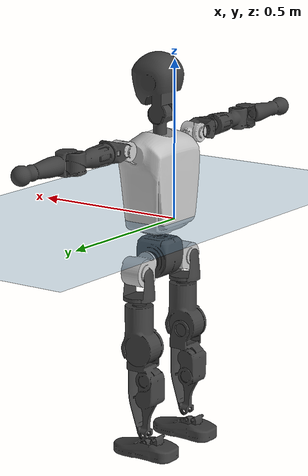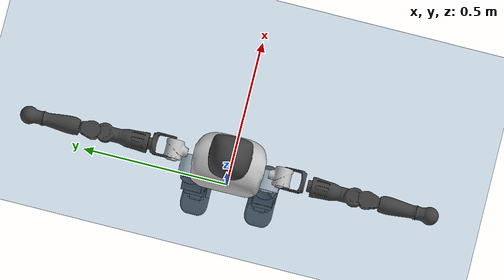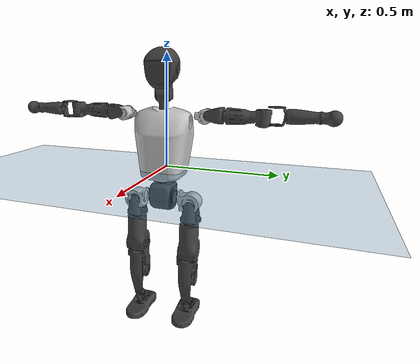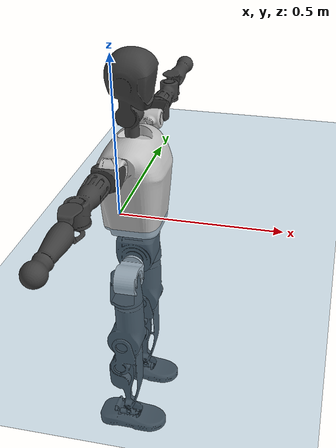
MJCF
<mujoco model="T1">
  <compiler angle="radian" assetdir="assets" balanceinertia="true" inertiafromgeom="false"/>

  <option timestep="0.005" density="1.2" viscosity="2e-05"/>

  <size nkey="1"/>

  <visual>
    <quality shadowsize="8192"/>
    <map shadowclip="0.5"/>
  </visual>

  <default>
    <default class="/">
      <joint armature="0.01" damping="0.01" frictionloss="0.1"/>
      <geom contype="0" conaffinity="0" group="1" solref="-1000 -80"/>
      <site size="0.01 0.005 0.005" group="5"/>
      <general forcelimited="true" biastype="affine" gainprm="25" biasprm="0 -25 -0.6"/>
      <default class="t1">
        <geom rgba="0.25 0.25 0.25 1"/>
        <default class="visual">
          <geom type="mesh" group="2"/>
        </default>
        <default class="collision">
          <geom group="3"/>
        </default>
        <default class="foot">
          <geom size="0.1115 0.05 0.015" type="box" condim="6" group="4" priority="1" solimp="0.015 1 0.015"/>
        </default>
        <default class="reward_collision_sphere">
          <geom group="5" rgba="1 0 0 1"/>
        </default>
      </default>
    </default>
  </default>

  <asset>
    <texture type="skybox" colorspace="auto" name="//unnamed_texture_0" builtin="gradient" rgb1="0.95 0.95 0.95" rgb2="0.95 0.95 0.95" width="100" height="600"/>
    <texture type="2d" colorspace="auto" name="texplane" builtin="checker" rgb1="0.345 0.575 0.748" rgb2="0.345 0.575 0.748" markrgb="1 1 1" width="512" height="512"/>
    <material name="MatPlane" class="/" texture="texplane" texuniform="true" texrepeat="2 2" specular="0.9"/>
    <mesh name="Trunk" class="/" file="Trunk.stl"/>
    <mesh name="H1" class="/" file="H1.stl"/>
    <mesh name="H2" class="/" file="H2.stl"/>
    <mesh name="AL1" class="/" file="AL1.stl"/>
    <mesh name="AL2" class="/" file="AL2.stl"/>
    <mesh name="AL3" class="/" file="AL3.stl"/>
    <mesh name="left_hand_link" class="/" file="left_hand_link.stl"/>
    <mesh name="AR1" class="/" file="AR1.stl"/>
    <mesh name="AR2" class="/" file="AR2.stl"/>
    <mesh name="AR3" class="/" file="AR3.stl"/>
    <mesh name="right_hand_link" class="/" file="right_hand_link.stl"/>
    <mesh name="Waist" class="/" file="Waist.stl"/>
    <mesh name="Hip_Pitch_Left" class="/" file="Hip_Pitch_Left.stl"/>
    <mesh name="Hip_Roll_Left" class="/" file="Hip_Roll_Left.stl"/>
    <mesh name="Hip_Yaw_Left" class="/" file="Hip_Yaw_Left.stl"/>
    <mesh name="Shank_Left" class="/" file="Shank_Left.stl"/>
    <mesh name="Ankle_Cross_Left" class="/" file="Ankle_Cross_Left.stl"/>
    <mesh name="left_foot_link" class="/" file="left_foot_link.stl"/>
    <mesh name="Hip_Pitch_Right" class="/" file="Hip_Pitch_Right.stl"/>
    <mesh name="Hip_Roll_Right" class="/" file="Hip_Roll_Right.stl"/>
    <mesh name="Hip_Yaw_Right" class="/" file="Hip_Yaw_Right.stl"/>
    <mesh name="Shank_Right" class="/" file="Shank_Right.stl"/>
    <mesh name="Ankle_Cross_Right" class="/" file="Ankle_Cross_Right.stl"/>
    <mesh name="right_foot_link" class="/" file="right_foot_link.stl"/>
  </asset>

  <worldbody>
    <geom name="floor" class="/" size="100 100 0.125" type="plane" group="0" material="MatPlane"/>
    <light name="toplight_shadow" class="/" pos="0 0 5" dir="0.0990148 0.0990148 -0.990148" type="directional" ambient="0.04 0.04 0.04" diffuse="0.55 0.55 0.55" specular="0.12 0.12 0.12"/>
    <light name="toplight_fill" class="/" pos="0 0 5" dir="0.0990148 0.0990148 -0.990148" type="directional" castshadow="false" ambient="0.04 0.04 0.04" diffuse="0.3 0.3 0.3" specular="0.08 0.08 0.08"/>
    <body name="trunk" childclass="t1" pos="0.00215108 0.00656786 -0.00349218" quat="0.999998 -0.000966287 -0.000999827 0.00142828">
      <inertial pos="0.045965 0.00057586 0.114329" quat="0.99996 -0.0038239 -0.00793501 -0.0014949" mass="15.8669" diaginertia="0.0387297 0.234643 0.0935761"/>
      <joint name="//unnamed_joint_0" type="free" armature="0" damping="0" frictionloss="0"/>
      <geom name="//unnamed_geom_1" class="visual" rgba="0.76 0.76 0.76 1" mesh="Trunk"/>
      <geom name="//unnamed_geom_2" class="collision" size="0.0812458 0.108328 0.162492" pos="0.0510564 0 0.133349" type="box"/>
      <geom name="//unnamed_geom_3" class="reward_collision_sphere" size="0.124577" pos="0.0510564 0 0.111124"/>
      <geom name="//unnamed_geom_4" class="reward_collision_sphere" size="0.0162492" pos="0.0510564 0.10945 0"/>
      <geom name="//unnamed_geom_5" class="reward_collision_sphere" size="0.0162492" pos="0.0510564 -0.10945 0"/>
      <geom name="//unnamed_geom_6" class="reward_collision_sphere" size="0.0162492" pos="0.0510564 0.137779 0.200023"/>
      <geom name="//unnamed_geom_7" class="reward_collision_sphere" size="0.0162492" pos="0.0510564 -0.137779 0.200023"/>
      <site name="imu" pos="0.0227841 0.0400379 0.00954209" size="0.0108328"/>
      <camera name="track" pos="0 -2.57531 0" quat="0.707107 0.707107 0 0" mode="trackcom"/>
      <camera name="ego_camera" pos="0.103815 0 0.46672" quat="-0.5 -0.5 0.5 0.5"/>
      <body name="H1" pos="0.0495052 -0.0022278 0.267051" quat="0.999999 0.000436536 0.000527195 0.00155664">
        <inertial pos="-0.00403743 -0.000824332 0.0596502" quat="0.770143 -0.0438095 0.0416795 0.634999" mass="0.552568" diaginertia="0.000109206 0.000740571 0.00026743"/>
        <joint name="AAHead_yaw" pos="0 0 0" axis="0.0135464 -0.0380476 0.999184" range="-1.47491 1.59565" armature="0.00859723" damping="0.00433373" frictionloss="0.137355"/>
        <geom name="//unnamed_geom_8" class="visual" mesh="H1"/>
        <body name="H2" pos="-0.00744649 -0.00145042 0.0665476" quat="1 0.000267216 0.000322668 0.000760931">
          <inertial pos="0.00718252 0.0107511 0.108598" quat="0.988436 0.107012 -0.0724103 -0.0793668" mass="0.8613" diaginertia="0.00100201 0.00829137 0.00308412"/>
          <joint name="Head_pitch" pos="0 0 0" axis="-0.0316274 -0.9995 -0.000469117" stiffness="0.0106052" range="-1.24371 0.289251" armature="0.0112687" damping="0.00315734" frictionloss="0.117718"/>
          <geom name="//unnamed_geom_9" class="visual" mesh="H2"/>
          <geom name="//unnamed_geom_10" class="collision" size="0.0866621" pos="0.0085094 0 0.122236"/>
          <geom name="//unnamed_geom_11" class="reward_collision_sphere" size="0.0974949" pos="0.0170188 0 0.111124"/>
        </body>
      </body>
      <body name="AL1" pos="0.053883 0.140563 0.244514" quat="1 7.16022e-05 0.000599571 -0.000152714">
        <inertial pos="0.000585537 0.0570902 0.0092741" quat="0.500892 0.526337 -0.506075 0.464721" mass="0.58477" diaginertia="0.000514013 0.00386448 0.000423219"/>
        <joint name="Left_Shoulder_Pitch" pos="0 0 0" axis="-0.00764711 0.999294 -0.0367794" range="-3.29199 1.26496" armature="0.0109671" damping="0" frictionloss="0.114975"/>
        <geom name="//unnamed_geom_12" class="visual" rgba="0.76 0.76 0.76 1" mesh="AL1"/>
        <body name="AL2" pos="0.00341398 0.066593 0.00696543" quat="0.999985 -0.00411179 -0.00295511 0.00224459">
          <inertial pos="0.0073851 0.0593045 0.000493226" quat="0.485917 0.512588 -0.487846 0.512977" mass="0.209715" diaginertia="0.000175888 0.00129435 0.000307437"/>
          <joint name="Left_Shoulder_Roll" pos="0 0 0" axis="-0.998556 0.030798 -0.0440114" stiffness="0.0467183" range="-1.74222 1.75552" armature="0.0120812" damping="0.0571482" frictionloss="0.0643075"/>
          <geom name="//unnamed_geom_13" class="visual" mesh="AL2"/>
          <body name="AL3" pos="-0.00461645 0.0678007 -0.00153587" quat="0.99999 -0.000150243 0.00436814 0.000540067">
            <inertial pos="-0.000674978 0.117013 0.00114044" quat="0.708667 0.705292 0.00131157 0.0187972" mass="1.16903" diaginertia="0.00610913 0.0428125 0.00123095"/>
            <joint name="Left_Elbow_Pitch" pos="0 0 0" axis="-0.0293832 -0.999451 0.0153067" stiffness="0.032925" range="-2.48138 2.46054" armature="0.00581117" damping="0.047583" frictionloss="0.0758779"/>
            <geom name="//unnamed_geom_14" class="visual" mesh="AL3"/>
            <geom name="//unnamed_geom_15" class="collision" size="0.0324983 0.0812458" pos="0 0.0643826 0" quat="0.707105 0.707108 0 0" type="cylinder"/>
            <geom name="//unnamed_geom_16" class="reward_collision_sphere" size="0.038998"/>
            <body name="left_hand_link" pos="-0.00281224 0.189263 0.00906015" quat="0.999997 0.0022686 -1.70868e-05 0.00108148">
              <inertial pos="-1.98357e-05 0.143086 0.00706627" quat="0.707677 0.706505 -0.00465133 0.00482171" mass="0.393914" diaginertia="0.00348582 0.0282073 0.000362444"/>
              <joint name="Left_Elbow_Yaw" pos="0 0 0" axis="0.00499082 0.020529 0.999777" range="-2.45757 0.0397475" armature="0.0110429" damping="0.0209368" frictionloss="0.0867291"/>
              <geom name="//unnamed_geom_17" class="visual" mesh="left_hand_link"/>
              <geom name="//unnamed_geom_18" class="collision" size="0.0324983 0.0947867" pos="0 0.167395 0" quat="0.707105 0.707108 0 0" type="cylinder"/>
              <geom name="//unnamed_geom_19" class="reward_collision_sphere" size="0.0541638"/>
              <geom name="//unnamed_geom_20" class="reward_collision_sphere" size="0.0379147" pos="0 0.141642 0"/>
              <geom name="//unnamed_geom_21" class="reward_collision_sphere" size="0.0379147" pos="0 0.276845 0"/>
            </body>
          </body>
        </body>
      </body>
      <body name="AR1" pos="0.050338 -0.138081 0.24486" quat="0.999999 0.000975329 0.000743274 -0.000854197">
        <inertial pos="0.00159156 -0.0497721 -0.00847777" quat="0.498566 0.498349 -0.500957 0.502119" mass="0.672395" diaginertia="0.000659713 0.00452152 0.000460286"/>
        <joint name="Right_Shoulder_Pitch" pos="0 0 0" axis="-0.00126005 -0.999999 0.000328069" stiffness="0.00325316" range="-1.21133 3.30167" armature="0.013067" damping="0.00594349" frictionloss="0.109933"/>
        <geom name="//unnamed_geom_22" class="visual" rgba="0.76 0.76 0.76 1" mesh="AR1"/>
        <body name="AR2" pos="-0.0018148 -0.0676178 0.00260371" quat="0.999999 0.000206026 0.00087821 0.000627918">
          <inertial pos="0.00546039 -0.0484412 0.00924987" quat="0.506163 0.475871 -0.517377 0.499667" mass="0.193536" diaginertia="0.000189076 0.00135121 0.000324777"/>
          <joint name="Right_Shoulder_Roll" pos="0 0 0" axis="-0.999735 -0.00502025 -0.0224522" range="-1.72166 1.41326" armature="0.0110427" damping="0.0439686" frictionloss="0.108911"/>
          <geom name="//unnamed_geom_23" class="visual" mesh="AR2"/>
          <body name="AR3" pos="-0.00577166 -0.0789062 0.00442741" quat="1 -2.27731e-05 -0.0006025 -0.000642698">
            <inertial pos="-0.00151621 -0.10627 -0.000812883" quat="0.706788 0.707405 -0.00352224 -0.00399625" mass="1.30411" diaginertia="0.00557713 0.0414847 0.0009868"/>
            <joint name="Right_Elbow_Pitch" pos="0 0 0" axis="-0.0064286 0.99997 0.00429966" stiffness="0.0218965" range="-2.27889 2.26403" armature="0.00612659" damping="0.00341786" frictionloss="0.153512"/>
            <geom name="//unnamed_geom_24" class="visual" mesh="AR3"/>
            <geom name="//unnamed_geom_25" class="collision" size="0.0324983 0.0812458" pos="0 -0.0643826 0" quat="0.707105 0.707108 0 0" type="cylinder"/>
            <geom name="//unnamed_geom_26" class="reward_collision_sphere" size="0.038998"/>
            <body name="right_hand_link" pos="0.000740472 -0.187081 -0.000226289" quat="0.999998 -0.000483328 0.00194564 0.000211804">
              <inertial pos="0.000478847 -0.142904 0.0107182" quat="0.677672 0.734853 -0.0192696 0.01952" mass="0.359802" diaginertia="0.00403305 0.028827 0.000346601"/>
              <joint name="Right_Elbow_Yaw" pos="0 0 0" axis="0.0190659 -0.00487309 0.999806" stiffness="0.0392506" range="0.170065 2.24733" armature="0.0108565" damping="0.00662275" frictionloss="0.105435"/>
              <geom name="//unnamed_geom_27" class="visual" mesh="right_hand_link"/>
              <geom name="//unnamed_geom_28" class="collision" size="0.0324983 0.0947867" pos="0 -0.167395 0" quat="0.707105 0.707108 0 0" type="cylinder"/>
              <geom name="//unnamed_geom_29" class="reward_collision_sphere" size="0.0541638"/>
              <geom name="//unnamed_geom_30" class="reward_collision_sphere" size="0.0379147" pos="0 -0.141642 0"/>
              <geom name="//unnamed_geom_31" class="reward_collision_sphere" size="0.0379147" pos="0 -0.276845 0"/>
            </body>
          </body>
        </body>
      </body>
      <body name="Waist" pos="0.0499889 -0.0018368 -0.127177" quat="1 0.000144599 -0.000435772 -0.000803986">
        <inertial pos="0.00360831 0.00150149 0.00484874" quat="0.985474 0.00721255 -0.169096 0.0139704" mass="3.44519" diaginertia="0.00257673 0.0182472 0.00789196"/>
        <joint name="Waist" pos="0 0 0" axis="-0.0385646 -0.00588625 0.999239" stiffness="0.0535567" range="-1.57422 1.53198" armature="0.00985165" damping="0" frictionloss="0.147275"/>
        <geom name="//unnamed_geom_32" class="visual" mesh="Waist"/>
        <body name="Hip_Pitch_Left" pos="-0.00657478 0.128467 0.00176376" quat="1 -0.000399742 -0.000792078 -0.000259617">
          <inertial pos="-0.00871376 -0.0123117 -0.0122445" quat="0.964586 0.262131 0.0165571 0.0242345" mass="1.21238" diaginertia="0.000822986 0.00525908 0.00206879"/>
          <joint name="Left_Hip_Pitch" pos="0 0 0" axis="-0.0117633 0.999913 -0.00590037" range="-1.82342 1.40479" armature="0.00984746" damping="0.0399659" frictionloss="0.104123"/>
          <geom name="//unnamed_geom_33" class="visual" rgba="0.76 0.76 0.76 1" mesh="Hip_Pitch_Left"/>
          <body name="Hip_Roll_Left" pos="-0.00439289 0.000218881 -0.0303681" quat="1 -0.000209099 -0.000232333 -4.40423e-05">
            <inertial pos="0.0058682 -0.00674586 -0.0614129" quat="0.700727 0.0181553 0.00314337 0.713191" mass="0.550382" diaginertia="0.000777594 0.00659215 0.000984639"/>
            <joint name="Left_Hip_Roll" pos="0 0 0" axis="-0.999934 -0.0114776 0.000884803" range="-1.60544 0.148561" armature="0.0119417" damping="0.0115783" frictionloss="0.137778"/>
            <geom name="//unnamed_geom_34" class="visual" mesh="Hip_Roll_Left"/>
            <geom name="//unnamed_geom_35" class="reward_collision_sphere" size="0.0595802"/>
            <body name="Hip_Yaw_Left" pos="0.00204211 -0.00606023 -0.0969555" quat="0.999999 -0.000551771 0.000933636 0.000734733">
              <inertial pos="-0.00591292 -0.00159154 -0.100483" quat="0.681837 -0.0593857 0.000946174 0.729089" mass="3.09254" diaginertia="0.0119487 0.0940412 0.00465387"/>
              <joint name="Left_Hip_Yaw" pos="0 0 0" axis="-0.0169645 -0.0390979 -0.999091" range="-1.07216 1.12897" armature="0.00994785" damping="0" frictionloss="0.117728"/>
              <geom name="//unnamed_geom_36" class="visual" mesh="Hip_Yaw_Left"/>
              <geom name="//unnamed_geom_37" class="collision" size="0.0541638 0.0866621" type="cylinder"/>
              <body name="Shank_Left" pos="-0.017958 -0.00799031 -0.141362" quat="0.999999 -0.000494453 0.000858907 0.000853222">
                <inertial pos="-0.00461031 0.00998724 -0.138623" quat="0.997936 -0.00187349 -0.0225945 0.0600766" mass="2.13805" diaginertia="0.0131822 0.12204 0.00268949"/>
                <joint name="Left_Knee_Pitch" pos="0 0 0" axis="-0.0103968 0.99985 -0.0138164" range="-0.0697635 2.32855" armature="0.0102374" damping="0" frictionloss="0.0484889"/>
                <geom name="//unnamed_geom_38" class="visual" mesh="Shank_Left"/>
                <geom name="//unnamed_geom_39" class="collision" size="0.0541638 0.0812458" pos="0 0 -0.133349" type="cylinder"/>
                <geom name="//unnamed_geom_40" class="reward_collision_sphere" size="0.070413"/>
                <body name="Ankle_Cross_Left" pos="-0.00129546 0.000476589 -0.306487" quat="1 0.000430094 0.000433812 0.000241869">
                  <inertial pos="-0.00469727 -0.00150065 -0.0128725" quat="0.445232 0.54818 0.551946 0.443422" mass="0.11209" diaginertia="1.35105e-05 0.000115752 2.14249e-05"/>
                  <joint name="Left_Ankle_Pitch" pos="0 0 0" axis="-0.0196782 0.998784 -0.0452088" stiffness="0.0461147" range="-0.839969 0.350192" armature="0.0105939" damping="0.000788975" frictionloss="0.124019"/>
                  <geom name="//unnamed_geom_41" class="visual" mesh="Ankle_Cross_Left"/>
                  <body name="left_foot_link" pos="-0.00297263 -0.00357419 -0.0131847" quat="0.999988 -0.00396655 0.00244164 -0.00160467">
                    <inertial pos="-0.00893383 0.00202045 -0.00809806" quat="-0.0104141 0.616943 -0.031789 0.786297" mass="0.822213" diaginertia="0.00117641 0.00818088 0.00385225"/>
                    <joint name="Left_Ankle_Roll" pos="0 0 0" axis="-0.99999 0.00232376 0.003721" range="-0.475237 0.512992" armature="0.0110339" damping="0.0329911" frictionloss="0.0991165"/>
                    <geom name="//unnamed_geom_42" class="visual" mesh="left_foot_link"/>
                    <geom name="left_foot" class="foot" size="0.0929938 0.0579652 0.0228939" pos="0.0085094 0 -0.0166686"/>
                    <geom name="//unnamed_geom_44" class="reward_collision_sphere" size="0.0563304" pos="0.0085094 0 -0.0166686"/>
                    <geom name="//unnamed_geom_45" class="reward_collision_sphere" size="0.0324983" pos="0.0808393 -0.029616 -0.0166686"/>
                    <geom name="//unnamed_geom_46" class="reward_collision_sphere" size="0.0324983" pos="-0.0595658 -0.029616 -0.0166686"/>
                    <site name="left_foot" class="foot" pos="0.0085094 0 -0.0166686" size="0.0108328"/>
                  </body>
                </body>
              </body>
            </body>
          </body>
        </body>
        <body name="Hip_Pitch_Right" pos="0.00646572 -0.134168 0.000237545" quat="0.999997 0.000939731 -0.00127468 -0.00196905">
          <inertial pos="0.00444293 0.0104741 -0.0268103" quat="0.974594 -0.223849 0.0076359 -0.000333152" mass="1.23718" diaginertia="0.000769477 0.00476246 0.00197002"/>
          <joint name="Right_Hip_Pitch" pos="0 0 0" axis="-0.000715036 -0.999993 -0.00365465" stiffness="0.0049449" range="-1.58385 1.7517" armature="0.00982544" damping="0.0309636" frictionloss="0.0780386"/>
          <geom name="//unnamed_geom_47" class="visual" rgba="0.76 0.76 0.76 1" mesh="Hip_Pitch_Right"/>
          <body name="Hip_Roll_Right" pos="-0.0074827 0.000802792 -0.0196607" quat="1 7.99171e-05 -3.20886e-05 -7.54335e-05">
            <inertial pos="0.00871646 0.0034635 -0.0533504" quat="0.708105 0.0103599 -0.00717462 0.705995" mass="0.432488" diaginertia="0.000774624 0.00524502 0.000873624"/>
            <joint name="Right_Hip_Roll" pos="0 0 0" axis="-0.999976 -0.00277123 -0.00637581" range="-0.118325 1.55085" armature="0.00878146" damping="0" frictionloss="0.126585"/>
            <geom name="//unnamed_geom_48" class="visual" mesh="Hip_Roll_Right"/>
            <geom name="//unnamed_geom_49" class="reward_collision_sphere" size="0.0595802"/>
            <body name="Hip_Yaw_Right" pos="0.00426692 -0.000738674 -0.0908095" quat="0.999999 -0.000266705 -0.000736997 -0.000703543">
              <inertial pos="-0.0059417 0.00766372 -0.108488" quat="0.715871 -0.0327988 -0.0354633 0.69656" mass="2.44608" diaginertia="0.0111011 0.0738821 0.00429101"/>
              <joint name="Right_Hip_Yaw" pos="0 0 0" axis="-0.00695892 0.0041694 -0.999967" range="-1.04552 1.01967" armature="0.0160965" damping="0.021101" frictionloss="0.105031"/>
              <geom name="//unnamed_geom_50" class="visual" mesh="Hip_Yaw_Right"/>
              <geom name="//unnamed_geom_51" class="collision" size="0.0541638 0.0866621" type="cylinder"/>
              <body name="Shank_Right" pos="-0.0206005 0.000685708 -0.147115" quat="1 0.000274538 -9.81492e-05 -0.00010847">
                <inertial pos="-0.0149015 -0.0110743 -0.137732" quat="0.998516 -0.00488034 -0.00683006 -0.0538121" mass="1.99041" diaginertia="0.0118864 0.110865 0.00306283"/>
                <joint name="Right_Knee_Pitch" pos="0 0 0" axis="0.0396402 -0.998984 -0.0214433" stiffness="0.00183866" range="-2.32925 0.00961129" armature="0.0106689" damping="0.00326266" frictionloss="0.0925032"/>
                <geom name="//unnamed_geom_52" class="visual" mesh="Shank_Right"/>
                <geom name="//unnamed_geom_53" class="collision" size="0.0541638 0.0812458" pos="0 0 -0.133349" type="cylinder"/>
                <geom name="//unnamed_geom_54" class="reward_collision_sphere" size="0.070413"/>
                <body name="Ankle_Cross_Right" pos="-0.00375061 -0.000947847 -0.310922" quat="1 -0.000144918 -0.000111095 -0.000188187">
                  <inertial pos="-0.00473867 -0.00382847 -0.00985035" quat="0.435689 0.56315 0.543094 0.445068" mass="0.0996009" diaginertia="1.19614e-05 9.21109e-05 2.01085e-05"/>
                  <joint name="Right_Ankle_Pitch" pos="0 0 0" axis="0.046821 -0.998497 -0.0284808" range="-0.32389 0.904751" armature="0.0107453" damping="0.00472466" frictionloss="0.103399"/>
                  <geom name="//unnamed_geom_55" class="visual" mesh="Ankle_Cross_Right"/>
                  <body name="right_foot_link" pos="0.00144782 0.00677174 -0.019671" quat="1 0.000455475 0.000225881 -0.000829383">
                    <inertial pos="-0.00983201 -0.00162897 -0.0148401" quat="0.0227965 0.633547 -0.0116232 0.773281" mass="0.883107" diaginertia="0.00103627 0.00818631 0.00382241"/>
                    <joint name="Right_Ankle_Roll" pos="0 0 0" axis="-0.999425 0.0160475 0.0298744" range="-0.45217 0.474429" armature="0.0098389" damping="0" frictionloss="0.155902"/>
                    <geom name="//unnamed_geom_56" class="visual" mesh="right_foot_link"/>
                    <geom name="right_foot" class="foot" size="0.0957933 0.0546547 0.0189947" pos="0.0085094 0 -0.0166686"/>
                    <geom name="//unnamed_geom_58" class="reward_collision_sphere" size="0.0433311"/>
                    <geom name="//unnamed_geom_59" class="reward_collision_sphere" size="0.0324983" pos="0.0085094 0 -0.0166686"/>
                    <geom name="//unnamed_geom_60" class="reward_collision_sphere" size="0.0324983" pos="0.0808393 0.029616 -0.0166686"/>
                    <geom name="//unnamed_geom_61" class="reward_collision_sphere" size="0.0324983" pos="-0.0595658 0.029616 -0.0166686"/>
                    <site name="right_foot" class="foot" pos="0.0085094 0 -0.0166686" size="0.0108328"/>
                  </body>
                </body>
              </body>
            </body>
          </body>
        </body>
      </body>
    </body>
  </worldbody>

  <contact>
    <pair class="/" geom1="floor" geom2="left_foot" name="//unnamed_contact_0"/>
    <pair class="/" geom1="floor" geom2="right_foot" name="//unnamed_contact_1"/>
  </contact>

  <actuator>
    <general name="AAHead_yaw" class="/" joint="AAHead_yaw" forcerange="-9.82524 9.82524" gainprm="26.961" biasprm="0 -26.961 -0.693788"/>
    <general name="Head_pitch" class="/" joint="Head_pitch" forcerange="-7.11268 7.11268" gainprm="26.961" biasprm="0 -26.961 -0.693788"/>
    <general name="Left_Shoulder_Pitch" class="/" joint="Left_Shoulder_Pitch" forcerange="-20.5481 20.5481" gainprm="26.961" biasprm="0 -26.961 -0.693788"/>
    <general name="Left_Shoulder_Roll" class="/" joint="Left_Shoulder_Roll" forcerange="-17.7213 17.7213" gainprm="26.961" biasprm="0 -26.961 -0.693788"/>
    <general name="Left_Elbow_Pitch" class="/" joint="Left_Elbow_Pitch" forcerange="-14.9223 14.9223" gainprm="26.961" biasprm="0 -26.961 -0.693788"/>
    <general name="Left_Elbow_Yaw" class="/" joint="Left_Elbow_Yaw" forcerange="-12.2803 12.2803" gainprm="26.961" biasprm="0 -26.961 -0.693788"/>
    <general name="Right_Shoulder_Pitch" class="/" joint="Right_Shoulder_Pitch" forcerange="-19.594 19.594" gainprm="26.961" biasprm="0 -26.961 -0.693788"/>
    <general name="Right_Shoulder_Roll" class="/" joint="Right_Shoulder_Roll" forcerange="-14.8635 14.8635" gainprm="26.961" biasprm="0 -26.961 -0.693788"/>
    <general name="Right_Elbow_Pitch" class="/" joint="Right_Elbow_Pitch" forcerange="-16.3564 16.3564" gainprm="26.961" biasprm="0 -26.961 -0.693788"/>
    <general name="Right_Elbow_Yaw" class="/" joint="Right_Elbow_Yaw" forcerange="-23.6837 23.6837" gainprm="26.961" biasprm="0 -26.961 -0.693788"/>
    <general name="Waist" class="/" joint="Waist" forcerange="-32.6737 32.6737" gainprm="26.961" biasprm="0 -26.961 -0.693788"/>
    <general name="Left_Hip_Pitch" class="/" joint="Left_Hip_Pitch" forcerange="-41.4194 41.4194" gainprm="26.961" biasprm="0 -26.961 -0.693788"/>
    <general name="Left_Hip_Roll" class="/" joint="Left_Hip_Roll" forcerange="-31.2437 31.2437" gainprm="26.961" biasprm="0 -26.961 -0.693788"/>
    <general name="Left_Hip_Yaw" class="/" joint="Left_Hip_Yaw" forcerange="-31.3289 31.3289" gainprm="26.961" biasprm="0 -26.961 -0.693788"/>
    <general name="Left_Knee_Pitch" class="/" joint="Left_Knee_Pitch" forcerange="-66.1037 66.1037" gainprm="26.961" biasprm="0 -26.961 -0.693788"/>
    <general name="Left_Ankle_Pitch" class="/" joint="Left_Ankle_Pitch" forcerange="-21.3722 21.3722" gainprm="26.961" biasprm="0 -26.961 -0.693788"/>
    <general name="Left_Ankle_Roll" class="/" joint="Left_Ankle_Roll" forcerange="-16.147 16.147" gainprm="26.961" biasprm="0 -26.961 -0.693788"/>
    <general name="Right_Hip_Pitch" class="/" joint="Right_Hip_Pitch" forcerange="-45.4072 45.4072" gainprm="26.961" biasprm="0 -26.961 -0.693788"/>
    <general name="Right_Hip_Roll" class="/" joint="Right_Hip_Roll" forcerange="-33.2934 33.2934" gainprm="26.961" biasprm="0 -26.961 -0.693788"/>
    <general name="Right_Hip_Yaw" class="/" joint="Right_Hip_Yaw" forcerange="-35.286 35.286" gainprm="26.961" biasprm="0 -26.961 -0.693788"/>
    <general name="Right_Knee_Pitch" class="/" joint="Right_Knee_Pitch" forcerange="-72.3613 72.3613" gainprm="26.961" biasprm="0 -26.961 -0.693788"/>
    <general name="Right_Ankle_Pitch" class="/" joint="Right_Ankle_Pitch" forcerange="-26.7112 26.7112" gainprm="26.961" biasprm="0 -26.961 -0.693788"/>
    <general name="Right_Ankle_Roll" class="/" joint="Right_Ankle_Roll" forcerange="-13.7088 13.7088" gainprm="26.961" biasprm="0 -26.961 -0.693788"/>
  </actuator>

  <sensor>
    <gyro site="imu" name="imu_angular_velocity"/>
    <velocimeter site="imu" name="imu_linear_velocity"/>
    <framelinvel objtype="site" objname="left_foot" name="left_foot_global_linear_velocity"/>
    <framelinvel objtype="site" objname="right_foot" name="right_foot_global_linear_velocity"/>
  </sensor>

  <keyframe>
    <key name="home" qpos="0 0 0.6385 1 0 0 0 0 0 0 1.4 0 -0.4 0 -1.4 0 0.4 0 -0.4 0 0 0.8 -0.4 0 0.4 0 0 -0.8 0.4 0"/>
  </keyframe>
</mujoco>
